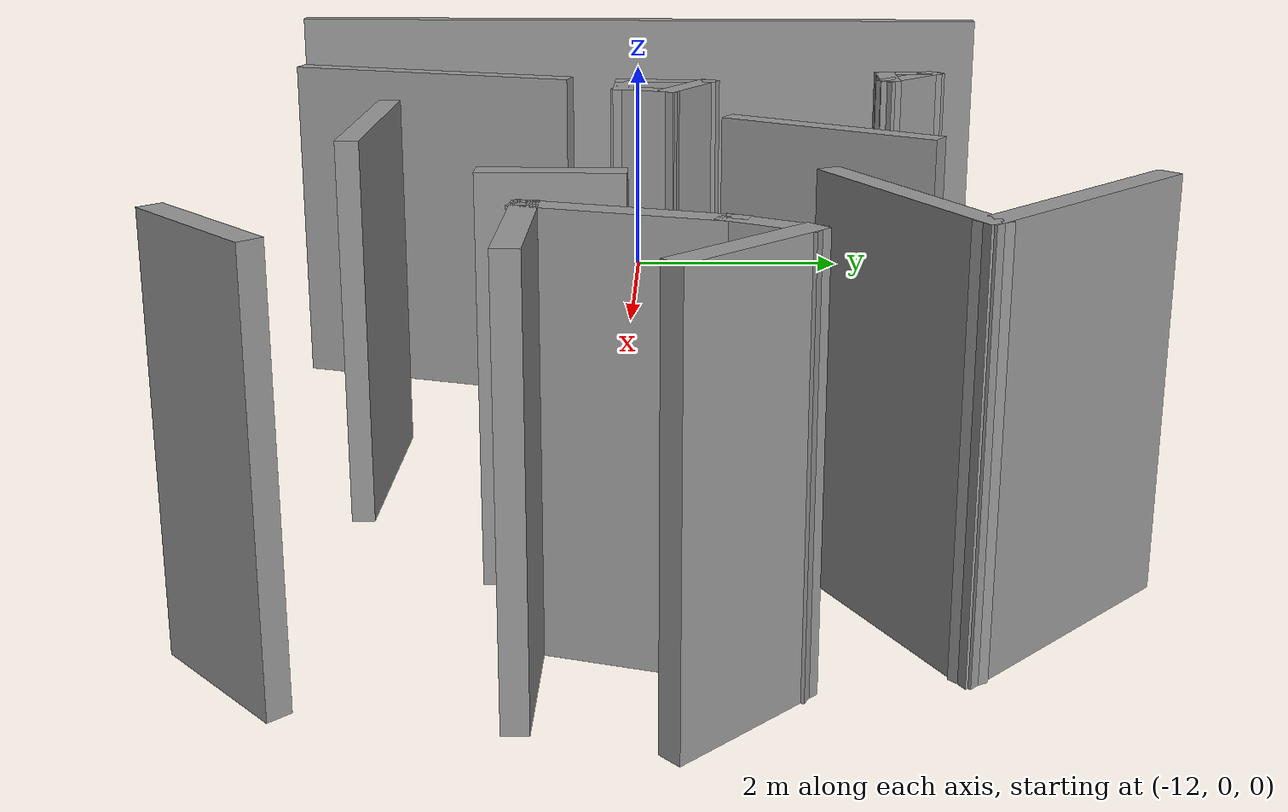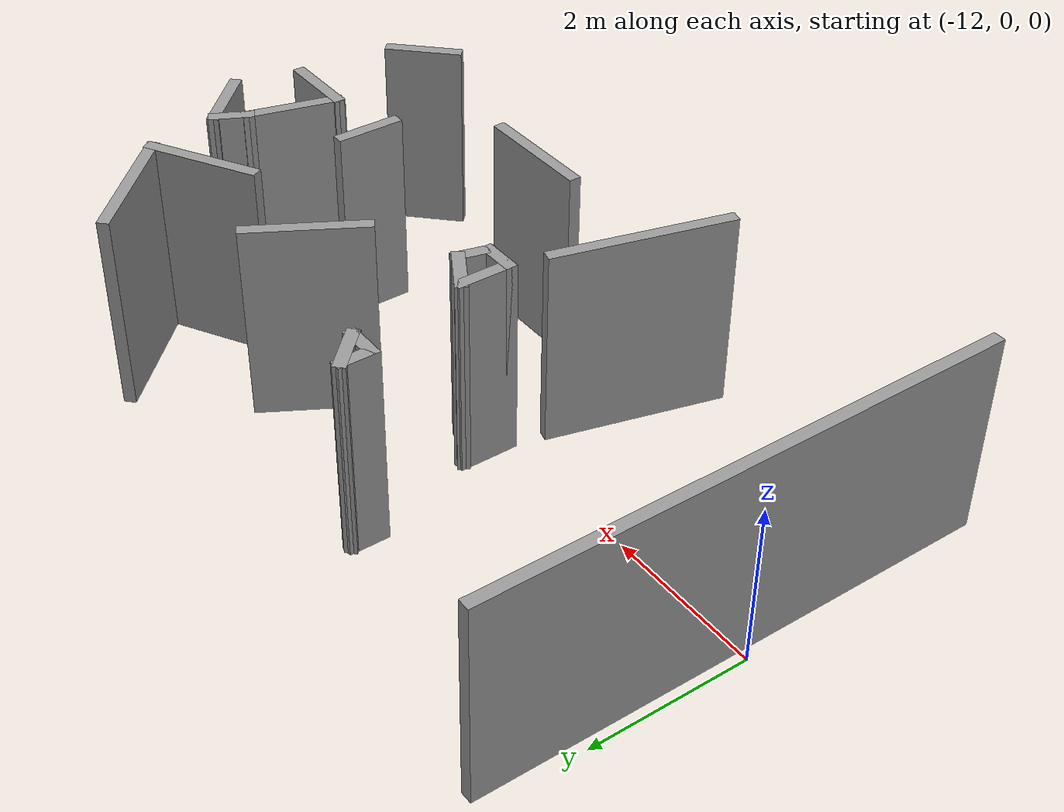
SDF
<sdf version="1.6">
 <model name="test2">
  <link name="Wall_34">
   <pose>-11.8 -0.000324 0 0 -0 1.5708</pose>
   <visual name="Wall_34_Visual">
    <pose>0 0 1.25 0 -0 0</pose>
    <geometry><box><size>6.5 0.15 2.5</size></box></geometry>
    <material>
     <script><uri>file://media/materials/scripts/gazebo.material</uri><name>Gazebo/Grey</name></script>
     <ambient>1 1 1 1</ambient>
     <diffuse>0.7 0.7 0.7 1</diffuse>
     <specular>0.01 0.01 0.01 1</specular>
     <emissive>0 0 0 1</emissive>
    </material>
    <meta><layer>0</layer></meta>
   </visual>
   <collision name="Wall_34_Collision">
    <pose>0 0 1.25 0 -0 0</pose>
    <geometry><box><size>6.5 0.15 2.5</size></box></geometry>
    <surface>
     <friction>
      <ode><mu>1</mu><mu2>1</mu2><fdir1>0 0 0</fdir1><slip1>0</slip1><slip2>0</slip2></ode>
      <torsional>
       <coefficient>1</coefficient>
       <patch_radius>0</patch_radius>
       <surface_radius>0</surface_radius>
       <use_patch_radius>1</use_patch_radius>
       <ode><slip>0</slip></ode>
      </torsional>
     </friction>
     <bounce><restitution_coefficient>0</restitution_coefficient><threshold>1e+06</threshold></bounce>
     <contact>
      <collide_without_contact>0</collide_without_contact>
      <collide_without_contact_bitmask>1</collide_without_contact_bitmask>
      <collide_bitmask>1</collide_bitmask>
      <ode>
       <soft_cfm>0</soft_cfm>
       <soft_erp>0.2</soft_erp>
       <kp>1e+13</kp>
       <kd>1</kd>
       <max_vel>0.01</max_vel>
       <min_depth>0</min_depth>
      </ode>
      <bullet>
       <split_impulse>1</split_impulse>
       <split_impulse_penetration_threshold>-0.01</split_impulse_penetration_threshold>
       <soft_cfm>0</soft_cfm>
       <soft_erp>0.2</soft_erp>
       <kp>1e+13</kp>
       <kd>1</kd>
      </bullet>
     </contact>
    </surface>
   </collision>
  </link>
  <link name="Wall_36">
   <pose>-8.37803 2.19361 0 0 0 -1.5708</pose>
   <visual name="Wall_36_Visual">
    <pose>0 0 1.25 0 -0 0</pose>
    <geometry><box><size>0.5 0.15 2.5</size></box></geometry>
    <material>
     <script><uri>file://media/materials/scripts/gazebo.material</uri><name>Gazebo/Grey</name></script>
     <ambient>1 1 1 1</ambient>
     <diffuse>0.7 0.7 0.7 1</diffuse>
     <specular>0.01 0.01 0.01 1</specular>
     <emissive>0 0 0 1</emissive>
    </material>
    <meta><layer>0</layer></meta>
   </visual>
   <collision name="Wall_36_Collision">
    <pose>0 0 1.25 0 -0 0</pose>
    <geometry><box><size>0.5 0.15 2.5</size></box></geometry>
    <surface>
     <friction>
      <ode><mu>1</mu><mu2>1</mu2><fdir1>0 0 0</fdir1><slip1>0</slip1><slip2>0</slip2></ode>
      <torsional>
       <coefficient>1</coefficient>
       <patch_radius>0</patch_radius>
       <surface_radius>0</surface_radius>
       <use_patch_radius>1</use_patch_radius>
       <ode><slip>0</slip></ode>
      </torsional>
     </friction>
     <bounce><restitution_coefficient>0</restitution_coefficient><threshold>1e+06</threshold></bounce>
     <contact>
      <collide_without_contact>0</collide_without_contact>
      <collide_without_contact_bitmask>1</collide_without_contact_bitmask>
      <collide_bitmask>1</collide_bitmask>
      <ode>
       <soft_cfm>0</soft_cfm>
       <soft_erp>0.2</soft_erp>
       <kp>1e+13</kp>
       <kd>1</kd>
       <max_vel>0.01</max_vel>
       <min_depth>0</min_depth>
      </ode>
      <bullet>
       <split_impulse>1</split_impulse>
       <split_impulse_penetration_threshold>-0.01</split_impulse_penetration_threshold>
       <soft_cfm>0</soft_cfm>
       <soft_erp>0.2</soft_erp>
       <kp>1e+13</kp>
       <kd>1</kd>
      </bullet>
     </contact>
    </surface>
   </collision>
  </link>
  <link name="Wall_38">
   <pose>-8.20303 2.01861 0 0 -0 0</pose>
   <visual name="Wall_38_Visual">
    <pose>0 0 1.25 0 -0 0</pose>
    <geometry><box><size>0.5 0.15 2.5</size></box></geometry>
    <material>
     <script><uri>file://media/materials/scripts/gazebo.material</uri><name>Gazebo/Grey</name></script>
     <ambient>1 1 1 1</ambient>
     <diffuse>0.7 0.7 0.7 1</diffuse>
     <specular>0.01 0.01 0.01 1</specular>
     <emissive>0 0 0 1</emissive>
    </material>
    <meta><layer>0</layer></meta>
   </visual>
   <collision name="Wall_38_Collision">
    <pose>0 0 1.25 0 -0 0</pose>
    <geometry><box><size>0.5 0.15 2.5</size></box></geometry>
    <surface>
     <friction>
      <ode><mu>1</mu><mu2>1</mu2><fdir1>0 0 0</fdir1><slip1>0</slip1><slip2>0</slip2></ode>
      <torsional>
       <coefficient>1</coefficient>
       <patch_radius>0</patch_radius>
       <surface_radius>0</surface_radius>
       <use_patch_radius>1</use_patch_radius>
       <ode><slip>0</slip></ode>
      </torsional>
     </friction>
     <bounce><restitution_coefficient>0</restitution_coefficient><threshold>1e+06</threshold></bounce>
     <contact>
      <collide_without_contact>0</collide_without_contact>
      <collide_without_contact_bitmask>1</collide_without_contact_bitmask>
      <collide_bitmask>1</collide_bitmask>
      <ode>
       <soft_cfm>0</soft_cfm>
       <soft_erp>0.2</soft_erp>
       <kp>1e+13</kp>
       <kd>1</kd>
       <max_vel>0.01</max_vel>
       <min_depth>0</min_depth>
      </ode>
      <bullet>
       <split_impulse>1</split_impulse>
       <split_impulse_penetration_threshold>-0.01</split_impulse_penetration_threshold>
       <soft_cfm>0</soft_cfm>
       <soft_erp>0.2</soft_erp>
       <kp>1e+13</kp>
       <kd>1</kd>
      </bullet>
     </contact>
    </surface>
   </collision>
  </link>
  <link name="Wall_39">
   <pose>-8.20303 2.19361 0 0 -0 2.35619</pose>
   <visual name="Wall_39_Visual">
    <pose>0 0 1.25 0 -0 0</pose>
    <geometry><box><size>0.644975 0.15 2.5</size></box></geometry>
    <material>
     <script><uri>file://media/materials/scripts/gazebo.material</uri><name>Gazebo/Grey</name></script>
     <ambient>1 1 1 1</ambient>
     <diffuse>0.7 0.7 0.7 1</diffuse>
     <specular>0.01 0.01 0.01 1</specular>
     <emissive>0 0 0 1</emissive>
    </material>
    <meta><layer>0</layer></meta>
   </visual>
   <collision name="Wall_39_Collision">
    <pose>0 0 1.25 0 -0 0</pose>
    <geometry><box><size>0.644975 0.15 2.5</size></box></geometry>
    <surface>
     <friction>
      <ode><mu>1</mu><mu2>1</mu2><fdir1>0 0 0</fdir1><slip1>0</slip1><slip2>0</slip2></ode>
      <torsional>
       <coefficient>1</coefficient>
       <patch_radius>0</patch_radius>
       <surface_radius>0</surface_radius>
       <use_patch_radius>1</use_patch_radius>
       <ode><slip>0</slip></ode>
      </torsional>
     </friction>
     <bounce><restitution_coefficient>0</restitution_coefficient><threshold>1e+06</threshold></bounce>
     <contact>
      <collide_without_contact>0</collide_without_contact>
      <collide_without_contact_bitmask>1</collide_without_contact_bitmask>
      <collide_bitmask>1</collide_bitmask>
      <ode>
       <soft_cfm>0</soft_cfm>
       <soft_erp>0.2</soft_erp>
       <kp>1e+13</kp>
       <kd>1</kd>
       <max_vel>0.01</max_vel>
       <min_depth>0</min_depth>
      </ode>
      <bullet>
       <split_impulse>1</split_impulse>
       <split_impulse_penetration_threshold>-0.01</split_impulse_penetration_threshold>
       <soft_cfm>0</soft_cfm>
       <soft_erp>0.2</soft_erp>
       <kp>1e+13</kp>
       <kd>1</kd>
      </bullet>
     </contact>
    </surface>
   </collision>
  </link>
  <link name="Wall_41">
   <pose>-7.93698 0.334815 0 0 0 -1.5708</pose>
   <visual name="Wall_41_Visual">
    <pose>0 0 1.25 0 -0 0</pose>
    <geometry><box><size>0.75 0.15 2.5</size></box></geometry>
    <material>
     <script><uri>file://media/materials/scripts/gazebo.material</uri><name>Gazebo/Grey</name></script>
     <ambient>1 1 1 1</ambient>
     <diffuse>0.7 0.7 0.7 1</diffuse>
     <specular>0.01 0.01 0.01 1</specular>
     <emissive>0 0 0 1</emissive>
    </material>
    <meta><layer>0</layer></meta>
   </visual>
   <collision name="Wall_41_Collision">
    <pose>0 0 1.25 0 -0 0</pose>
    <geometry><box><size>0.75 0.15 2.5</size></box></geometry>
    <surface>
     <friction>
      <ode><mu>1</mu><mu2>1</mu2><fdir1>0 0 0</fdir1><slip1>0</slip1><slip2>0</slip2></ode>
      <torsional>
       <coefficient>1</coefficient>
       <patch_radius>0</patch_radius>
       <surface_radius>0</surface_radius>
       <use_patch_radius>1</use_patch_radius>
       <ode><slip>0</slip></ode>
      </torsional>
     </friction>
     <bounce><restitution_coefficient>0</restitution_coefficient><threshold>1e+06</threshold></bounce>
     <contact>
      <collide_without_contact>0</collide_without_contact>
      <collide_without_contact_bitmask>1</collide_without_contact_bitmask>
      <collide_bitmask>1</collide_bitmask>
      <ode>
       <soft_cfm>0</soft_cfm>
       <soft_erp>0.2</soft_erp>
       <kp>1e+13</kp>
       <kd>1</kd>
       <max_vel>0.01</max_vel>
       <min_depth>0</min_depth>
      </ode>
      <bullet>
       <split_impulse>1</split_impulse>
       <split_impulse_penetration_threshold>-0.01</split_impulse_penetration_threshold>
       <soft_cfm>0</soft_cfm>
       <soft_erp>0.2</soft_erp>
       <kp>1e+13</kp>
       <kd>1</kd>
      </bullet>
     </contact>
    </surface>
   </collision>
  </link>
  <link name="Wall_42">
   <pose>-7.76198 0.034815 0 0 -0 0</pose>
   <visual name="Wall_42_Visual">
    <pose>0 0 1.25 0 -0 0</pose>
    <geometry><box><size>0.5 0.15 2.5</size></box></geometry>
    <material>
     <script><uri>file://media/materials/scripts/gazebo.material</uri><name>Gazebo/Grey</name></script>
     <ambient>1 1 1 1</ambient>
     <diffuse>0.7 0.7 0.7 1</diffuse>
     <specular>0.01 0.01 0.01 1</specular>
     <emissive>0 0 0 1</emissive>
    </material>
    <meta><layer>0</layer></meta>
   </visual>
   <collision name="Wall_42_Collision">
    <pose>0 0 1.25 0 -0 0</pose>
    <geometry><box><size>0.5 0.15 2.5</size></box></geometry>
    <surface>
     <friction>
      <ode><mu>1</mu><mu2>1</mu2><fdir1>0 0 0</fdir1><slip1>0</slip1><slip2>0</slip2></ode>
      <torsional>
       <coefficient>1</coefficient>
       <patch_radius>0</patch_radius>
       <surface_radius>0</surface_radius>
       <use_patch_radius>1</use_patch_radius>
       <ode><slip>0</slip></ode>
      </torsional>
     </friction>
     <bounce><restitution_coefficient>0</restitution_coefficient><threshold>1e+06</threshold></bounce>
     <contact>
      <collide_without_contact>0</collide_without_contact>
      <collide_without_contact_bitmask>1</collide_without_contact_bitmask>
      <collide_bitmask>1</collide_bitmask>
      <ode>
       <soft_cfm>0</soft_cfm>
       <soft_erp>0.2</soft_erp>
       <kp>1e+13</kp>
       <kd>1</kd>
       <max_vel>0.01</max_vel>
       <min_depth>0</min_depth>
      </ode>
      <bullet>
       <split_impulse>1</split_impulse>
       <split_impulse_penetration_threshold>-0.01</split_impulse_penetration_threshold>
       <soft_cfm>0</soft_cfm>
       <soft_erp>0.2</soft_erp>
       <kp>1e+13</kp>
       <kd>1</kd>
      </bullet>
     </contact>
    </surface>
   </collision>
  </link>
  <link name="Wall_43">
   <pose>-7.54168 0.203852 0 0 -0 1.309</pose>
   <visual name="Wall_43_Visual">
    <pose>0 0 1.25 0 -0 0</pose>
    <geometry><box><size>0.5 0.15 2.5</size></box></geometry>
    <material>
     <script><uri>file://media/materials/scripts/gazebo.material</uri><name>Gazebo/Grey</name></script>
     <ambient>1 1 1 1</ambient>
     <diffuse>0.7 0.7 0.7 1</diffuse>
     <specular>0.01 0.01 0.01 1</specular>
     <emissive>0 0 0 1</emissive>
    </material>
    <meta><layer>0</layer></meta>
   </visual>
   <collision name="Wall_43_Collision">
    <pose>0 0 1.25 0 -0 0</pose>
    <geometry><box><size>0.5 0.15 2.5</size></box></geometry>
    <surface>
     <friction>
      <ode><mu>1</mu><mu2>1</mu2><fdir1>0 0 0</fdir1><slip1>0</slip1><slip2>0</slip2></ode>
      <torsional>
       <coefficient>1</coefficient>
       <patch_radius>0</patch_radius>
       <surface_radius>0</surface_radius>
       <use_patch_radius>1</use_patch_radius>
       <ode><slip>0</slip></ode>
      </torsional>
     </friction>
     <bounce><restitution_coefficient>0</restitution_coefficient><threshold>1e+06</threshold></bounce>
     <contact>
      <collide_without_contact>0</collide_without_contact>
      <collide_without_contact_bitmask>1</collide_without_contact_bitmask>
      <collide_bitmask>1</collide_bitmask>
      <ode>
       <soft_cfm>0</soft_cfm>
       <soft_erp>0.2</soft_erp>
       <kp>1e+13</kp>
       <kd>1</kd>
       <max_vel>0.01</max_vel>
       <min_depth>0</min_depth>
      </ode>
      <bullet>
       <split_impulse>1</split_impulse>
       <split_impulse_penetration_threshold>-0.01</split_impulse_penetration_threshold>
       <soft_cfm>0</soft_cfm>
       <soft_erp>0.2</soft_erp>
       <kp>1e+13</kp>
       <kd>1</kd>
      </bullet>
     </contact>
    </surface>
   </collision>
  </link>
  <link name="Wall_44">
   <pose>-7.71668 0.503852 0 0 -0 2.60523</pose>
   <visual name="Wall_44_Visual">
    <pose>0 0 1.25 0 -0 0</pose>
    <geometry><box><size>0.662564 0.15 2.5</size></box></geometry>
    <material>
     <script><uri>file://media/materials/scripts/gazebo.material</uri><name>Gazebo/Grey</name></script>
     <ambient>1 1 1 1</ambient>
     <diffuse>0.7 0.7 0.7 1</diffuse>
     <specular>0.01 0.01 0.01 1</specular>
     <emissive>0 0 0 1</emissive>
    </material>
    <meta><layer>0</layer></meta>
   </visual>
   <collision name="Wall_44_Collision">
    <pose>0 0 1.25 0 -0 0</pose>
    <geometry><box><size>0.662564 0.15 2.5</size></box></geometry>
    <surface>
     <friction>
      <ode><mu>1</mu><mu2>1</mu2><fdir1>0 0 0</fdir1><slip1>0</slip1><slip2>0</slip2></ode>
      <torsional>
       <coefficient>1</coefficient>
       <patch_radius>0</patch_radius>
       <surface_radius>0</surface_radius>
       <use_patch_radius>1</use_patch_radius>
       <ode><slip>0</slip></ode>
      </torsional>
     </friction>
     <bounce><restitution_coefficient>0</restitution_coefficient><threshold>1e+06</threshold></bounce>
     <contact>
      <collide_without_contact>0</collide_without_contact>
      <collide_without_contact_bitmask>1</collide_without_contact_bitmask>
      <collide_bitmask>1</collide_bitmask>
      <ode>
       <soft_cfm>0</soft_cfm>
       <soft_erp>0.2</soft_erp>
       <kp>1e+13</kp>
       <kd>1</kd>
       <max_vel>0.01</max_vel>
       <min_depth>0</min_depth>
      </ode>
      <bullet>
       <split_impulse>1</split_impulse>
       <split_impulse_penetration_threshold>-0.01</split_impulse_penetration_threshold>
       <soft_cfm>0</soft_cfm>
       <soft_erp>0.2</soft_erp>
       <kp>1e+13</kp>
       <kd>1</kd>
      </bullet>
     </contact>
    </surface>
   </collision>
  </link>
  <link name="Wall_46">
   <pose>-8.33041 -1.47444 0 0 0 -1.8326</pose>
   <visual name="Wall_46_Visual">
    <pose>0 0 1.25 0 -0 0</pose>
    <geometry><box><size>2.25 0.15 2.5</size></box></geometry>
    <material>
     <script><uri>file://media/materials/scripts/gazebo.material</uri><name>Gazebo/Grey</name></script>
     <ambient>1 1 1 1</ambient>
     <diffuse>0.7 0.7 0.7 1</diffuse>
     <specular>0.01 0.01 0.01 1</specular>
     <emissive>0 0 0 1</emissive>
    </material>
    <meta><layer>0</layer></meta>
   </visual>
   <collision name="Wall_46_Collision">
    <pose>0 0 1.25 0 -0 0</pose>
    <geometry><box><size>2.25 0.15 2.5</size></box></geometry>
    <surface>
     <friction>
      <ode><mu>1</mu><mu2>1</mu2><fdir1>0 0 0</fdir1><slip1>0</slip1><slip2>0</slip2></ode>
      <torsional>
       <coefficient>1</coefficient>
       <patch_radius>0</patch_radius>
       <surface_radius>0</surface_radius>
       <use_patch_radius>1</use_patch_radius>
       <ode><slip>0</slip></ode>
      </torsional>
     </friction>
     <bounce><restitution_coefficient>0</restitution_coefficient><threshold>1e+06</threshold></bounce>
     <contact>
      <collide_without_contact>0</collide_without_contact>
      <collide_without_contact_bitmask>1</collide_without_contact_bitmask>
      <collide_bitmask>1</collide_bitmask>
      <ode>
       <soft_cfm>0</soft_cfm>
       <soft_erp>0.2</soft_erp>
       <kp>1e+13</kp>
       <kd>1</kd>
       <max_vel>0.01</max_vel>
       <min_depth>0</min_depth>
      </ode>
      <bullet>
       <split_impulse>1</split_impulse>
       <split_impulse_penetration_threshold>-0.01</split_impulse_penetration_threshold>
       <soft_cfm>0</soft_cfm>
       <soft_erp>0.2</soft_erp>
       <kp>1e+13</kp>
       <kd>1</kd>
      </bullet>
     </contact>
    </surface>
   </collision>
  </link>
  <link name="Wall_48">
   <pose>-6.0786 1.4171 0 0 -0 1.0472</pose>
   <visual name="Wall_48_Visual">
    <pose>0 0 1.25 0 -0 0</pose>
    <geometry><box><size>1.5 0.15 2.5</size></box></geometry>
    <material>
     <script><uri>file://media/materials/scripts/gazebo.material</uri><name>Gazebo/Grey</name></script>
     <ambient>1 1 1 1</ambient>
     <diffuse>0.7 0.7 0.7 1</diffuse>
     <specular>0.01 0.01 0.01 1</specular>
     <emissive>0 0 0 1</emissive>
    </material>
    <meta><layer>0</layer></meta>
   </visual>
   <collision name="Wall_48_Collision">
    <pose>0 0 1.25 0 -0 0</pose>
    <geometry><box><size>1.5 0.15 2.5</size></box></geometry>
    <surface>
     <friction>
      <ode><mu>1</mu><mu2>1</mu2><fdir1>0 0 0</fdir1><slip1>0</slip1><slip2>0</slip2></ode>
      <torsional>
       <coefficient>1</coefficient>
       <patch_radius>0</patch_radius>
       <surface_radius>0</surface_radius>
       <use_patch_radius>1</use_patch_radius>
       <ode><slip>0</slip></ode>
      </torsional>
     </friction>
     <bounce><restitution_coefficient>0</restitution_coefficient><threshold>1e+06</threshold></bounce>
     <contact>
      <collide_without_contact>0</collide_without_contact>
      <collide_without_contact_bitmask>1</collide_without_contact_bitmask>
      <collide_bitmask>1</collide_bitmask>
      <ode>
       <soft_cfm>0</soft_cfm>
       <soft_erp>0.2</soft_erp>
       <kp>1e+13</kp>
       <kd>1</kd>
       <max_vel>0.01</max_vel>
       <min_depth>0</min_depth>
      </ode>
      <bullet>
       <split_impulse>1</split_impulse>
       <split_impulse_penetration_threshold>-0.01</split_impulse_penetration_threshold>
       <soft_cfm>0</soft_cfm>
       <soft_erp>0.2</soft_erp>
       <kp>1e+13</kp>
       <kd>1</kd>
      </bullet>
     </contact>
    </surface>
   </collision>
  </link>
  <link name="Wall_50">
   <pose>-4.13183 2.57857 0 0 0 -0.785398</pose>
   <visual name="Wall_50_Visual">
    <pose>0 0 1.25 0 -0 0</pose>
    <geometry><box><size>1.75 0.15 2.5</size></box></geometry>
    <material>
     <script><uri>file://media/materials/scripts/gazebo.material</uri><name>Gazebo/Grey</name></script>
     <ambient>1 1 1 1</ambient>
     <diffuse>0.7 0.7 0.7 1</diffuse>
     <specular>0.01 0.01 0.01 1</specular>
     <emissive>0 0 0 1</emissive>
    </material>
    <meta><layer>0</layer></meta>
   </visual>
   <collision name="Wall_50_Collision">
    <pose>0 0 1.25 0 -0 0</pose>
    <geometry><box><size>1.75 0.15 2.5</size></box></geometry>
    <surface>
     <friction>
      <ode><mu>1</mu><mu2>1</mu2><fdir1>0 0 0</fdir1><slip1>0</slip1><slip2>0</slip2></ode>
      <torsional>
       <coefficient>1</coefficient>
       <patch_radius>0</patch_radius>
       <surface_radius>0</surface_radius>
       <use_patch_radius>1</use_patch_radius>
       <ode><slip>0</slip></ode>
      </torsional>
     </friction>
     <bounce><restitution_coefficient>0</restitution_coefficient><threshold>1e+06</threshold></bounce>
     <contact>
      <collide_without_contact>0</collide_without_contact>
      <collide_without_contact_bitmask>1</collide_without_contact_bitmask>
      <collide_bitmask>1</collide_bitmask>
      <ode>
       <soft_cfm>0</soft_cfm>
       <soft_erp>0.2</soft_erp>
       <kp>1e+13</kp>
       <kd>1</kd>
       <max_vel>0.01</max_vel>
       <min_depth>0</min_depth>
      </ode>
      <bullet>
       <split_impulse>1</split_impulse>
       <split_impulse_penetration_threshold>-0.01</split_impulse_penetration_threshold>
       <soft_cfm>0</soft_cfm>
       <soft_erp>0.2</soft_erp>
       <kp>1e+13</kp>
       <kd>1</kd>
      </bullet>
     </contact>
    </surface>
   </collision>
  </link>
  <link name="Wall_51">
   <pose>-4.15071 1.67539 0 0 0 -2.61799</pose>
   <visual name="Wall_51_Visual">
    <pose>0 0 1.25 0 -0 0</pose>
    <geometry><box><size>1.5 0.15 2.5</size></box></geometry>
    <material>
     <script><uri>file://media/materials/scripts/gazebo.material</uri><name>Gazebo/Grey</name></script>
     <ambient>1 1 1 1</ambient>
     <diffuse>0.7 0.7 0.7 1</diffuse>
     <specular>0.01 0.01 0.01 1</specular>
     <emissive>0 0 0 1</emissive>
    </material>
    <meta><layer>0</layer></meta>
   </visual>
   <collision name="Wall_51_Collision">
    <pose>0 0 1.25 0 -0 0</pose>
    <geometry><box><size>1.5 0.15 2.5</size></box></geometry>
    <surface>
     <friction>
      <ode><mu>1</mu><mu2>1</mu2><fdir1>0 0 0</fdir1><slip1>0</slip1><slip2>0</slip2></ode>
      <torsional>
       <coefficient>1</coefficient>
       <patch_radius>0</patch_radius>
       <surface_radius>0</surface_radius>
       <use_patch_radius>1</use_patch_radius>
       <ode><slip>0</slip></ode>
      </torsional>
     </friction>
     <bounce><restitution_coefficient>0</restitution_coefficient><threshold>1e+06</threshold></bounce>
     <contact>
      <collide_without_contact>0</collide_without_contact>
      <collide_without_contact_bitmask>1</collide_without_contact_bitmask>
      <collide_bitmask>1</collide_bitmask>
      <ode>
       <soft_cfm>0</soft_cfm>
       <soft_erp>0.2</soft_erp>
       <kp>1e+13</kp>
       <kd>1</kd>
       <max_vel>0.01</max_vel>
       <min_depth>0</min_depth>
      </ode>
      <bullet>
       <split_impulse>1</split_impulse>
       <split_impulse_penetration_threshold>-0.01</split_impulse_penetration_threshold>
       <soft_cfm>0</soft_cfm>
       <soft_erp>0.2</soft_erp>
       <kp>1e+13</kp>
       <kd>1</kd>
      </bullet>
     </contact>
    </surface>
   </collision>
  </link>
  <link name="Wall_53">
   <pose>-4.68231 -0.253108 0 0 0 -1.5708</pose>
   <inertial>
    <inertia><ixx>nan</ixx><ixy>0</ixy><ixz>0</ixz><iyy>nan</iyy><iyz>0</iyz><izz>nan</izz></inertia>
    <mass>0</mass>
   </inertial>
   <visual name="Wall_53_Visual">
    <pose>0 0 1.25 0 -0 0</pose>
    <geometry><box><size>0.856959 0.15 2.5</size></box></geometry>
    <material>
     <script><uri>file://media/materials/scripts/gazebo.material</uri><name>Gazebo/Grey</name></script>
     <ambient>1 1 1 1</ambient>
     <diffuse>0.7 0.7 0.7 1</diffuse>
     <specular>0.01 0.01 0.01 1</specular>
     <emissive>0 0 0 1</emissive>
    </material>
    <meta><layer>0</layer></meta>
   </visual>
   <collision name="Wall_53_Collision">
    <pose>0 0 1.25 0 -0 0</pose>
    <geometry><box><size>0.856959 0.15 2.5</size></box></geometry>
    <surface>
     <friction>
      <ode><mu>1</mu><mu2>1</mu2><fdir1>0 0 0</fdir1><slip1>0</slip1><slip2>0</slip2></ode>
      <torsional>
       <coefficient>1</coefficient>
       <patch_radius>0</patch_radius>
       <surface_radius>0</surface_radius>
       <use_patch_radius>1</use_patch_radius>
       <ode><slip>0</slip></ode>
      </torsional>
     </friction>
     <bounce><restitution_coefficient>0</restitution_coefficient><threshold>1e+06</threshold></bounce>
     <contact>
      <collide_without_contact>0</collide_without_contact>
      <collide_without_contact_bitmask>1</collide_without_contact_bitmask>
      <collide_bitmask>1</collide_bitmask>
      <ode>
       <soft_cfm>0</soft_cfm>
       <soft_erp>0.2</soft_erp>
       <kp>1e+13</kp>
       <kd>1</kd>
       <max_vel>0.01</max_vel>
       <min_depth>0</min_depth>
      </ode>
      <bullet>
       <split_impulse>1</split_impulse>
       <split_impulse_penetration_threshold>-0.01</split_impulse_penetration_threshold>
       <soft_cfm>0</soft_cfm>
       <soft_erp>0.2</soft_erp>
       <kp>1e+13</kp>
       <kd>1</kd>
      </bullet>
     </contact>
    </surface>
   </collision>
  </link>
  <link name="Wall_55">
   <pose>-6.24299 -1.57045 0 0 -0 0</pose>
   <visual name="Wall_55_Visual">
    <pose>0 0 1.25 0 -0 0</pose>
    <geometry><box><size>1.5 0.15 2.5</size></box></geometry>
    <material>
     <script><uri>file://media/materials/scripts/gazebo.material</uri><name>Gazebo/Grey</name></script>
     <ambient>1 1 1 1</ambient>
     <diffuse>0.7 0.7 0.7 1</diffuse>
     <specular>0.01 0.01 0.01 1</specular>
     <emissive>0 0 0 1</emissive>
    </material>
    <meta><layer>0</layer></meta>
   </visual>
   <collision name="Wall_55_Collision">
    <pose>0 0 1.25 0 -0 0</pose>
    <geometry><box><size>1.5 0.15 2.5</size></box></geometry>
    <surface>
     <friction>
      <ode><mu>1</mu><mu2>1</mu2><fdir1>0 0 0</fdir1><slip1>0</slip1><slip2>0</slip2></ode>
      <torsional>
       <coefficient>1</coefficient>
       <patch_radius>0</patch_radius>
       <surface_radius>0</surface_radius>
       <use_patch_radius>1</use_patch_radius>
       <ode><slip>0</slip></ode>
      </torsional>
     </friction>
     <bounce><restitution_coefficient>0</restitution_coefficient><threshold>1e+06</threshold></bounce>
     <contact>
      <collide_without_contact>0</collide_without_contact>
      <collide_without_contact_bitmask>1</collide_without_contact_bitmask>
      <collide_bitmask>1</collide_bitmask>
      <ode>
       <soft_cfm>0</soft_cfm>
       <soft_erp>0.2</soft_erp>
       <kp>1e+13</kp>
       <kd>1</kd>
       <max_vel>0.01</max_vel>
       <min_depth>0</min_depth>
      </ode>
      <bullet>
       <split_impulse>1</split_impulse>
       <split_impulse_penetration_threshold>-0.01</split_impulse_penetration_threshold>
       <soft_cfm>0</soft_cfm>
       <soft_erp>0.2</soft_erp>
       <kp>1e+13</kp>
       <kd>1</kd>
      </bullet>
     </contact>
    </surface>
   </collision>
  </link>
  <link name="Wall_57">
   <pose>-3.4105 -1.87878 0 0 -0 0.785398</pose>
   <inertial>
    <inertia><ixx>nan</ixx><ixy>0</ixy><ixz>0</ixz><iyy>nan</iyy><iyz>0</iyz><izz>nan</izz></inertia>
    <mass>0</mass>
   </inertial>
   <visual name="Wall_57_Visual">
    <pose>0 0 1.25 0 -0 0</pose>
    <geometry><box><size>0.984753 0.15 2.5</size></box></geometry>
    <material>
     <script><uri>file://media/materials/scripts/gazebo.material</uri><name>Gazebo/Grey</name></script>
     <ambient>1 1 1 1</ambient>
     <diffuse>0.7 0.7 0.7 1</diffuse>
     <specular>0.01 0.01 0.01 1</specular>
     <emissive>0 0 0 1</emissive>
    </material>
    <meta><layer>0</layer></meta>
   </visual>
   <collision name="Wall_57_Collision">
    <pose>0 0 1.25 0 -0 0</pose>
    <geometry><box><size>0.984753 0.15 2.5</size></box></geometry>
    <surface>
     <friction>
      <ode><mu>1</mu><mu2>1</mu2><fdir1>0 0 0</fdir1><slip1>0</slip1><slip2>0</slip2></ode>
      <torsional>
       <coefficient>1</coefficient>
       <patch_radius>0</patch_radius>
       <surface_radius>0</surface_radius>
       <use_patch_radius>1</use_patch_radius>
       <ode><slip>0</slip></ode>
      </torsional>
     </friction>
     <bounce><restitution_coefficient>0</restitution_coefficient><threshold>1e+06</threshold></bounce>
     <contact>
      <collide_without_contact>0</collide_without_contact>
      <collide_without_contact_bitmask>1</collide_without_contact_bitmask>
      <collide_bitmask>1</collide_bitmask>
      <ode>
       <soft_cfm>0</soft_cfm>
       <soft_erp>0.2</soft_erp>
       <kp>1e+13</kp>
       <kd>1</kd>
       <max_vel>0.01</max_vel>
       <min_depth>0</min_depth>
      </ode>
      <bullet>
       <split_impulse>1</split_impulse>
       <split_impulse_penetration_threshold>-0.01</split_impulse_penetration_threshold>
       <soft_cfm>0</soft_cfm>
       <soft_erp>0.2</soft_erp>
       <kp>1e+13</kp>
       <kd>1</kd>
      </bullet>
     </contact>
    </surface>
   </collision>
  </link>
  <link name="Wall_59">
   <pose>-3.71442 0.210017 0 0 0 -1.8326</pose>
   <visual name="Wall_59_Visual">
    <pose>0 0 1.25 0 -0 0</pose>
    <geometry><box><size>1.25 0.15 2.5</size></box></geometry>
    <material>
     <script><uri>file://media/materials/scripts/gazebo.material</uri><name>Gazebo/Grey</name></script>
     <ambient>1 1 1 1</ambient>
     <diffuse>0.7 0.7 0.7 1</diffuse>
     <specular>0.01 0.01 0.01 1</specular>
     <emissive>0 0 0 1</emissive>
    </material>
    <meta><layer>0</layer></meta>
   </visual>
   <collision name="Wall_59_Collision">
    <pose>0 0 1.25 0 -0 0</pose>
    <geometry><box><size>1.25 0.15 2.5</size></box></geometry>
    <surface>
     <friction>
      <ode><mu>1</mu><mu2>1</mu2><fdir1>0 0 0</fdir1><slip1>0</slip1><slip2>0</slip2></ode>
      <torsional>
       <coefficient>1</coefficient>
       <patch_radius>0</patch_radius>
       <surface_radius>0</surface_radius>
       <use_patch_radius>1</use_patch_radius>
       <ode><slip>0</slip></ode>
      </torsional>
     </friction>
     <bounce><restitution_coefficient>0</restitution_coefficient><threshold>1e+06</threshold></bounce>
     <contact>
      <collide_without_contact>0</collide_without_contact>
      <collide_without_contact_bitmask>1</collide_without_contact_bitmask>
      <collide_bitmask>1</collide_bitmask>
      <ode>
       <soft_cfm>0</soft_cfm>
       <soft_erp>0.2</soft_erp>
       <kp>1e+13</kp>
       <kd>1</kd>
       <max_vel>0.01</max_vel>
       <min_depth>0</min_depth>
      </ode>
      <bullet>
       <split_impulse>1</split_impulse>
       <split_impulse_penetration_threshold>-0.01</split_impulse_penetration_threshold>
       <soft_cfm>0</soft_cfm>
       <soft_erp>0.2</soft_erp>
       <kp>1e+13</kp>
       <kd>1</kd>
      </bullet>
     </contact>
    </surface>
   </collision>
  </link>
  <link name="Wall_60">
   <pose>-3.43177 -0.321243 0 0 -0 0</pose>
   <visual name="Wall_60_Visual">
    <pose>0 0 1.25 0 -0 0</pose>
    <geometry><box><size>1 0.15 2.5</size></box></geometry>
    <material>
     <script><uri>file://media/materials/scripts/gazebo.material</uri><name>Gazebo/Grey</name></script>
     <ambient>1 1 1 1</ambient>
     <diffuse>0.7 0.7 0.7 1</diffuse>
     <specular>0.01 0.01 0.01 1</specular>
     <emissive>0 0 0 1</emissive>
    </material>
    <meta><layer>0</layer></meta>
   </visual>
   <collision name="Wall_60_Collision">
    <pose>0 0 1.25 0 -0 0</pose>
    <geometry><box><size>1 0.15 2.5</size></box></geometry>
    <surface>
     <friction>
      <ode><mu>1</mu><mu2>1</mu2><fdir1>0 0 0</fdir1><slip1>0</slip1><slip2>0</slip2></ode>
      <torsional>
       <coefficient>1</coefficient>
       <patch_radius>0</patch_radius>
       <surface_radius>0</surface_radius>
       <use_patch_radius>1</use_patch_radius>
       <ode><slip>0</slip></ode>
      </torsional>
     </friction>
     <bounce><restitution_coefficient>0</restitution_coefficient><threshold>1e+06</threshold></bounce>
     <contact>
      <collide_without_contact>0</collide_without_contact>
      <collide_without_contact_bitmask>1</collide_without_contact_bitmask>
      <collide_bitmask>1</collide_bitmask>
      <ode>
       <soft_cfm>0</soft_cfm>
       <soft_erp>0.2</soft_erp>
       <kp>1e+13</kp>
       <kd>1</kd>
       <max_vel>0.01</max_vel>
       <min_depth>0</min_depth>
      </ode>
      <bullet>
       <split_impulse>1</split_impulse>
       <split_impulse_penetration_threshold>-0.01</split_impulse_penetration_threshold>
       <soft_cfm>0</soft_cfm>
       <soft_erp>0.2</soft_erp>
       <kp>1e+13</kp>
       <kd>1</kd>
      </bullet>
     </contact>
    </surface>
   </collision>
  </link>
  <link name="Wall_62">
   <pose>-3.08729 0.800315 0 0 -0 2.35619</pose>
   <visual name="Wall_62_Visual">
    <pose>0 0 1.25 0 -0 0</pose>
    <geometry><box><size>1 0.15 2.5</size></box></geometry>
    <material>
     <script><uri>file://media/materials/scripts/gazebo.material</uri><name>Gazebo/Grey</name></script>
     <ambient>1 1 1 1</ambient>
     <diffuse>0.7 0.7 0.7 1</diffuse>
     <specular>0.01 0.01 0.01 1</specular>
     <emissive>0 0 0 1</emissive>
    </material>
    <meta><layer>0</layer></meta>
   </visual>
   <collision name="Wall_62_Collision">
    <pose>0 0 1.25 0 -0 0</pose>
    <geometry><box><size>1 0.15 2.5</size></box></geometry>
    <surface>
     <friction>
      <ode><mu>1</mu><mu2>1</mu2><fdir1>0 0 0</fdir1><slip1>0</slip1><slip2>0</slip2></ode>
      <torsional>
       <coefficient>1</coefficient>
       <patch_radius>0</patch_radius>
       <surface_radius>0</surface_radius>
       <use_patch_radius>1</use_patch_radius>
       <ode><slip>0</slip></ode>
      </torsional>
     </friction>
     <bounce><restitution_coefficient>0</restitution_coefficient><threshold>1e+06</threshold></bounce>
     <contact>
      <collide_without_contact>0</collide_without_contact>
      <collide_without_contact_bitmask>1</collide_without_contact_bitmask>
      <collide_bitmask>1</collide_bitmask>
      <ode>
       <soft_cfm>0</soft_cfm>
       <soft_erp>0.2</soft_erp>
       <kp>1e+13</kp>
       <kd>1</kd>
       <max_vel>0.01</max_vel>
       <min_depth>0</min_depth>
      </ode>
      <bullet>
       <split_impulse>1</split_impulse>
       <split_impulse_penetration_threshold>-0.01</split_impulse_penetration_threshold>
       <soft_cfm>0</soft_cfm>
       <soft_erp>0.2</soft_erp>
       <kp>1e+13</kp>
       <kd>1</kd>
      </bullet>
     </contact>
    </surface>
   </collision>
  </link>
  <link name="Wall_63">
   <pose>-3.47994 0.921056 0 0 0 -2.04435</pose>
   <visual name="Wall_63_Visual">
    <pose>0 0 1.25 0 -0 0</pose>
    <geometry><box><size>0.554021 0.15 2.5</size></box></geometry>
    <material>
     <script><uri>file://media/materials/scripts/gazebo.material</uri><name>Gazebo/Grey</name></script>
     <ambient>1 1 1 1</ambient>
     <diffuse>0.7 0.7 0.7 1</diffuse>
     <specular>0.01 0.01 0.01 1</specular>
     <emissive>0 0 0 1</emissive>
    </material>
    <meta><layer>0</layer></meta>
   </visual>
   <collision name="Wall_63_Collision">
    <pose>0 0 1.25 0 -0 0</pose>
    <geometry><box><size>0.554021 0.15 2.5</size></box></geometry>
    <surface>
     <friction>
      <ode><mu>1</mu><mu2>1</mu2><fdir1>0 0 0</fdir1><slip1>0</slip1><slip2>0</slip2></ode>
      <torsional>
       <coefficient>1</coefficient>
       <patch_radius>0</patch_radius>
       <surface_radius>0</surface_radius>
       <use_patch_radius>1</use_patch_radius>
       <ode><slip>0</slip></ode>
      </torsional>
     </friction>
     <bounce><restitution_coefficient>0</restitution_coefficient><threshold>1e+06</threshold></bounce>
     <contact>
      <collide_without_contact>0</collide_without_contact>
      <collide_without_contact_bitmask>1</collide_without_contact_bitmask>
      <collide_bitmask>1</collide_bitmask>
      <ode>
       <soft_cfm>0</soft_cfm>
       <soft_erp>0.2</soft_erp>
       <kp>1e+13</kp>
       <kd>1</kd>
       <max_vel>0.01</max_vel>
       <min_depth>0</min_depth>
      </ode>
      <bullet>
       <split_impulse>1</split_impulse>
       <split_impulse_penetration_threshold>-0.01</split_impulse_penetration_threshold>
       <soft_cfm>0</soft_cfm>
       <soft_erp>0.2</soft_erp>
       <kp>1e+13</kp>
       <kd>1</kd>
      </bullet>
     </contact>
    </surface>
   </collision>
  </link>
  <static>1</static>
 </model>
</sdf>
